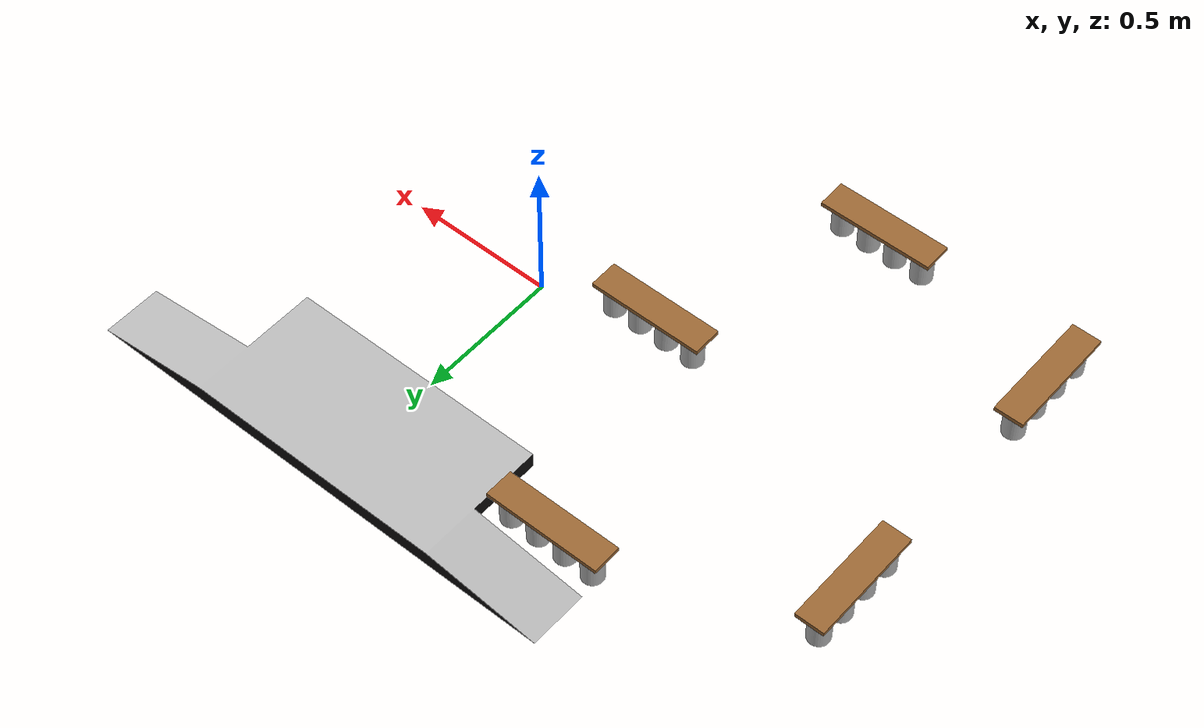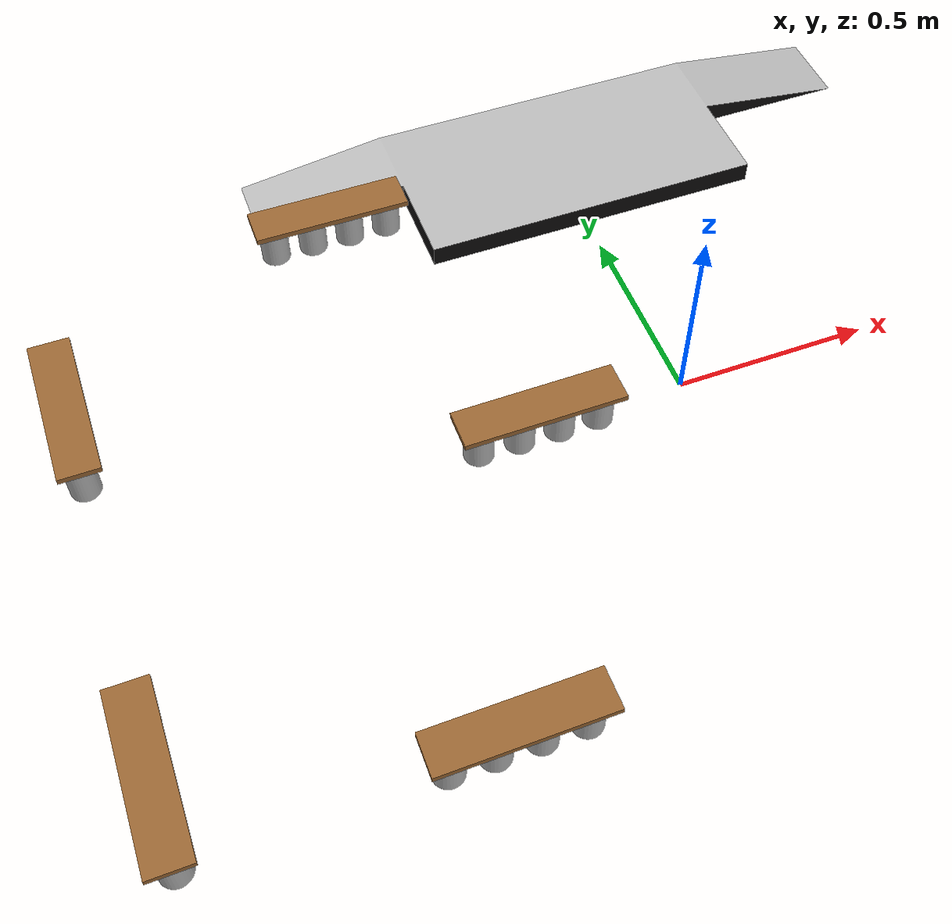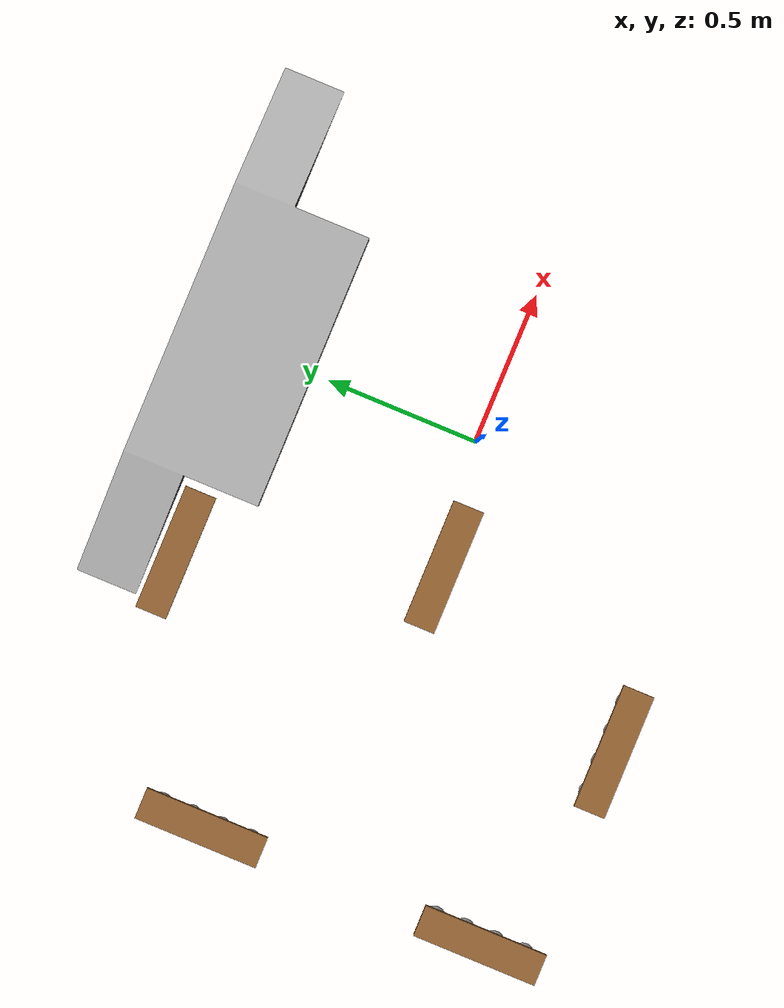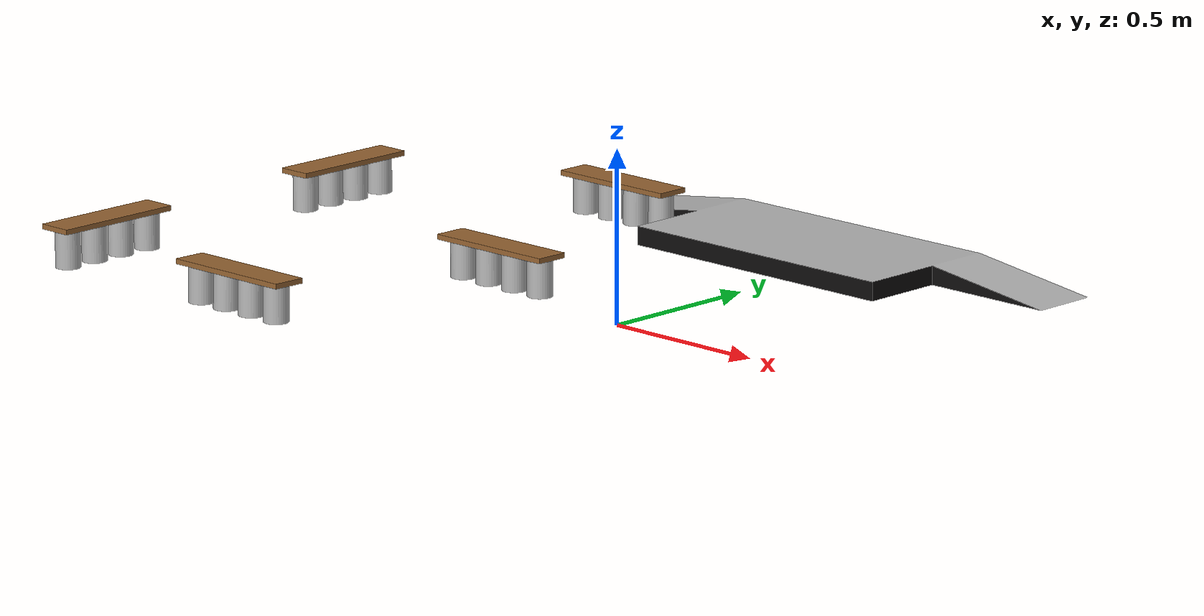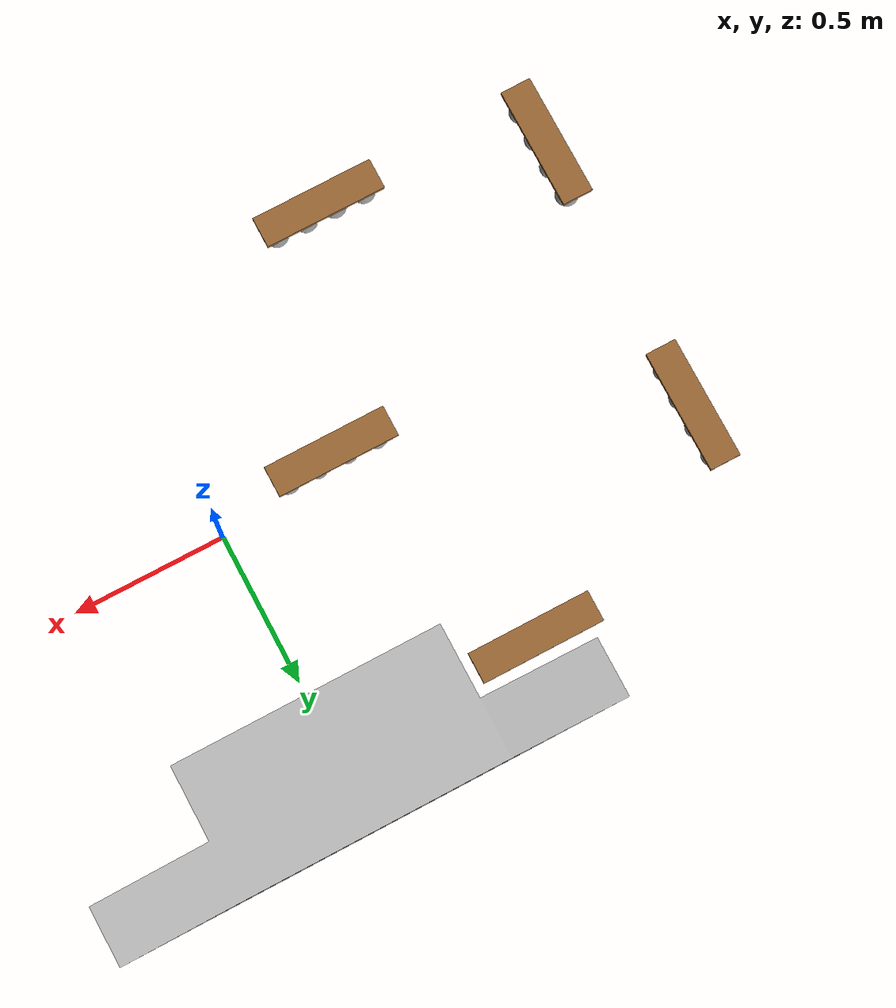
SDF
<sdf version="1.7">
 <world name="default">
  <model name="Stage">
   <static>1</static>
   <plugin name="gz::sim::systems::Label" filename="gz-sim-label-system"><label>11</label></plugin>
   <link name="link_0">
    <inertial>
     <pose>0 0 0.02 0 -0 0</pose>
     <mass>0.025</mass>
     <inertia><ixx>2.5e-05</ixx><ixy>0</ixy><ixz>0</ixz><iyy>2.5e-05</iyy><iyz>0</iyz><izz>8e-06</izz></inertia>
    </inertial>
    <visual name="visual">
     <geometry><mesh><uri>model://Stage/meshes/stage.dae</uri><scale>1 1 1</scale></mesh></geometry>
    </visual>
    <collision name="table_collision">
     <geometry><mesh><scale>1 1 1</scale><uri>model://Stage/meshes/stage.dae</uri></mesh></geometry>
    </collision>
   </link>
   <pose>-0.071315 0.782 0.047551 0 0 -1.57</pose>
  </model>
  <model name="Can">
   <static>0</static>
   <plugin name="gz::sim::systems::Label" filename="gz-sim-label-system"><label>11</label></plugin>
   <link name="link_0">
    <inertial>
     <pose>0 0 0.02 0 -0 0</pose>
     <mass>0.025</mass>
     <inertia><ixx>2.5e-05</ixx><ixy>0</ixy><ixz>0</ixz><iyy>2.5e-05</iyy><iyz>0</iyz><izz>8e-06</izz></inertia>
    </inertial>
    <visual name="visual">
     <geometry><mesh><uri>model://Can/meshes/can.dae</uri><scale>1 1 1</scale></mesh></geometry>
    </visual>
    <collision name="collision">
     <max_contacts>20</max_contacts>
     <pose>0 0 0.0545 0 -0 0</pose>
     <geometry><cylinder><radius>0.0365</radius><length>0.109</length></cylinder></geometry>
     <surface>
      <friction><ode><mu>0.9</mu><mu2>0.9</mu2></ode></friction>
      <contact>
       <ode>
        <soft_cfm>0</soft_cfm>
        <soft_erp>0.2</soft_erp>
        <kp>10</kp>
        <kd>1e+09</kd>
        <max_vel>0.01</max_vel>
        <min_depth>0.001</min_depth>
       </ode>
      </contact>
     </surface>
    </collision>
   </link>
   <pose>-1.42534 0.474681 0.047323 -2.2e-05 8.2e-05 -0</pose>
  </model>
  <model name="Can_0">
   <static>0</static>
   <plugin name="gz::sim::systems::Label" filename="gz-sim-label-system"><label>11</label></plugin>
   <link name="link_0">
    <inertial>
     <pose>0 0 0.02 0 -0 0</pose>
     <mass>0.025</mass>
     <inertia><ixx>2.5e-05</ixx><ixy>0</ixy><ixz>0</ixz><iyy>2.5e-05</iyy><iyz>0</iyz><izz>8e-06</izz></inertia>
    </inertial>
    <visual name="visual">
     <geometry><mesh><uri>model://Can/meshes/can.dae</uri><scale>1 1 1</scale></mesh></geometry>
    </visual>
    <collision name="collision">
     <max_contacts>20</max_contacts>
     <pose>0 0 0.0545 0 -0 0</pose>
     <geometry><cylinder><radius>0.0365</radius><length>0.109</length></cylinder></geometry>
     <surface>
      <friction><ode><mu>0.9</mu><mu2>0.9</mu2></ode></friction>
      <contact>
       <ode>
        <soft_cfm>0</soft_cfm>
        <soft_erp>0.2</soft_erp>
        <kp>10</kp>
        <kd>1e+09</kd>
        <max_vel>0.01</max_vel>
        <min_depth>0.001</min_depth>
       </ode>
      </contact>
     </surface>
    </collision>
   </link>
   <pose>-1.42461 0.374855 0.047159 -2.4e-05 0.000124 1e-06</pose>
  </model>
  <model name="Can_1">
   <static>0</static>
   <plugin name="gz::sim::systems::Label" filename="gz-sim-label-system"><label>11</label></plugin>
   <link name="link_0">
    <inertial>
     <pose>0 0 0.02 0 -0 0</pose>
     <mass>0.025</mass>
     <inertia><ixx>2.5e-05</ixx><ixy>0</ixy><ixz>0</ixz><iyy>2.5e-05</iyy><iyz>0</iyz><izz>8e-06</izz></inertia>
    </inertial>
    <visual name="visual">
     <geometry><mesh><uri>model://Can/meshes/can.dae</uri><scale>1 1 1</scale></mesh></geometry>
    </visual>
    <collision name="collision">
     <max_contacts>20</max_contacts>
     <pose>0 0 0.0545 0 -0 0</pose>
     <geometry><cylinder><radius>0.0365</radius><length>0.109</length></cylinder></geometry>
     <surface>
      <friction><ode><mu>0.9</mu><mu2>0.9</mu2></ode></friction>
      <contact>
       <ode>
        <soft_cfm>0</soft_cfm>
        <soft_erp>0.2</soft_erp>
        <kp>10</kp>
        <kd>1e+09</kd>
        <max_vel>0.01</max_vel>
        <min_depth>0.001</min_depth>
       </ode>
      </contact>
     </surface>
    </collision>
   </link>
   <pose>-1.42486 0.27501 0.047584 -2.3e-05 0.000141 1e-06</pose>
  </model>
  <model name="Can_2">
   <static>0</static>
   <plugin name="gz::sim::systems::Label" filename="gz-sim-label-system"><label>11</label></plugin>
   <link name="link_0">
    <inertial>
     <pose>0 0 0.02 0 -0 0</pose>
     <mass>0.025</mass>
     <inertia><ixx>2.5e-05</ixx><ixy>0</ixy><ixz>0</ixz><iyy>2.5e-05</iyy><iyz>0</iyz><izz>8e-06</izz></inertia>
    </inertial>
    <visual name="visual">
     <geometry><mesh><uri>model://Can/meshes/can.dae</uri><scale>1 1 1</scale></mesh></geometry>
    </visual>
    <collision name="collision">
     <max_contacts>20</max_contacts>
     <pose>0 0 0.0545 0 -0 0</pose>
     <geometry><cylinder><radius>0.0365</radius><length>0.109</length></cylinder></geometry>
     <surface>
      <friction><ode><mu>0.9</mu><mu2>0.9</mu2></ode></friction>
      <contact>
       <ode>
        <soft_cfm>0</soft_cfm>
        <soft_erp>0.2</soft_erp>
        <kp>10</kp>
        <kd>1e+09</kd>
        <max_vel>0.01</max_vel>
        <min_depth>0.001</min_depth>
       </ode>
      </contact>
     </surface>
    </collision>
   </link>
   <pose>-1.42532 0.174907 0.046965 0 -0 0</pose>
  </model>
  <model name="Can_3">
   <static>0</static>
   <plugin name="gz::sim::systems::Label" filename="gz-sim-label-system"><label>11</label></plugin>
   <link name="link_0">
    <inertial>
     <pose>0 0 0.02 0 -0 0</pose>
     <mass>0.025</mass>
     <inertia><ixx>2.5e-05</ixx><ixy>0</ixy><ixz>0</ixz><iyy>2.5e-05</iyy><iyz>0</iyz><izz>8e-06</izz></inertia>
    </inertial>
    <visual name="visual">
     <geometry><mesh><uri>model://Can/meshes/can.dae</uri><scale>1 1 1</scale></mesh></geometry>
    </visual>
    <collision name="collision">
     <max_contacts>20</max_contacts>
     <pose>0 0 0.0545 0 -0 0</pose>
     <geometry><cylinder><radius>0.0365</radius><length>0.109</length></cylinder></geometry>
     <surface>
      <friction><ode><mu>0.9</mu><mu2>0.9</mu2></ode></friction>
      <contact>
       <ode>
        <soft_cfm>0</soft_cfm>
        <soft_erp>0.2</soft_erp>
        <kp>10</kp>
        <kd>1e+09</kd>
        <max_vel>0.01</max_vel>
        <min_depth>0.001</min_depth>
       </ode>
      </contact>
     </surface>
    </collision>
   </link>
   <pose>-1.42546 -0.750038 0.046914 0 -0 0</pose>
  </model>
  <model name="Can_4">
   <static>0</static>
   <plugin name="gz::sim::systems::Label" filename="gz-sim-label-system"><label>11</label></plugin>
   <link name="link_0">
    <inertial>
     <pose>0 0 0.02 0 -0 0</pose>
     <mass>0.025</mass>
     <inertia><ixx>2.5e-05</ixx><ixy>0</ixy><ixz>0</ixz><iyy>2.5e-05</iyy><iyz>0</iyz><izz>8e-06</izz></inertia>
    </inertial>
    <visual name="visual">
     <geometry><mesh><uri>model://Can/meshes/can.dae</uri><scale>1 1 1</scale></mesh></geometry>
    </visual>
    <collision name="collision">
     <max_contacts>20</max_contacts>
     <pose>0 0 0.0545 0 -0 0</pose>
     <geometry><cylinder><radius>0.0365</radius><length>0.109</length></cylinder></geometry>
     <surface>
      <friction><ode><mu>0.9</mu><mu2>0.9</mu2></ode></friction>
      <contact>
       <ode>
        <soft_cfm>0</soft_cfm>
        <soft_erp>0.2</soft_erp>
        <kp>10</kp>
        <kd>1e+09</kd>
        <max_vel>0.01</max_vel>
        <min_depth>0.001</min_depth>
       </ode>
      </contact>
     </surface>
    </collision>
   </link>
   <pose>-1.42553 -0.64996 0.047006 0.000123 0.000204 -1e-06</pose>
  </model>
  <model name="Can_5">
   <static>0</static>
   <plugin name="gz::sim::systems::Label" filename="gz-sim-label-system"><label>11</label></plugin>
   <link name="link_0">
    <inertial>
     <pose>0 0 0.02 0 -0 0</pose>
     <mass>0.025</mass>
     <inertia><ixx>2.5e-05</ixx><ixy>0</ixy><ixz>0</ixz><iyy>2.5e-05</iyy><iyz>0</iyz><izz>8e-06</izz></inertia>
    </inertial>
    <visual name="visual">
     <geometry><mesh><uri>model://Can/meshes/can.dae</uri><scale>1 1 1</scale></mesh></geometry>
    </visual>
    <collision name="collision">
     <max_contacts>20</max_contacts>
     <pose>0 0 0.0545 0 -0 0</pose>
     <geometry><cylinder><radius>0.0365</radius><length>0.109</length></cylinder></geometry>
     <surface>
      <friction><ode><mu>0.9</mu><mu2>0.9</mu2></ode></friction>
      <contact>
       <ode>
        <soft_cfm>0</soft_cfm>
        <soft_erp>0.2</soft_erp>
        <kp>10</kp>
        <kd>1e+09</kd>
        <max_vel>0.01</max_vel>
        <min_depth>0.001</min_depth>
       </ode>
      </contact>
     </surface>
    </collision>
   </link>
   <pose>-1.42525 -0.54997 0.047629 8.9e-05 0.000146 0</pose>
  </model>
  <model name="Can_6">
   <static>0</static>
   <plugin name="gz::sim::systems::Label" filename="gz-sim-label-system"><label>11</label></plugin>
   <link name="link_0">
    <inertial>
     <pose>0 0 0.02 0 -0 0</pose>
     <mass>0.025</mass>
     <inertia><ixx>2.5e-05</ixx><ixy>0</ixy><ixz>0</ixz><iyy>2.5e-05</iyy><iyz>0</iyz><izz>8e-06</izz></inertia>
    </inertial>
    <visual name="visual">
     <geometry><mesh><uri>model://Can/meshes/can.dae</uri><scale>1 1 1</scale></mesh></geometry>
    </visual>
    <collision name="collision">
     <max_contacts>20</max_contacts>
     <pose>0 0 0.0545 0 -0 0</pose>
     <geometry><cylinder><radius>0.0365</radius><length>0.109</length></cylinder></geometry>
     <surface>
      <friction><ode><mu>0.9</mu><mu2>0.9</mu2></ode></friction>
      <contact>
       <ode>
        <soft_cfm>0</soft_cfm>
        <soft_erp>0.2</soft_erp>
        <kp>10</kp>
        <kd>1e+09</kd>
        <max_vel>0.01</max_vel>
        <min_depth>0.001</min_depth>
       </ode>
      </contact>
     </surface>
    </collision>
   </link>
   <pose>-1.42518 -0.449827 0.047314 5e-06 2.1e-05 -0</pose>
  </model>
  <model name="Can_7">
   <static>0</static>
   <plugin name="gz::sim::systems::Label" filename="gz-sim-label-system"><label>11</label></plugin>
   <link name="link_0">
    <inertial>
     <pose>0 0 0.02 0 -0 0</pose>
     <mass>0.025</mass>
     <inertia><ixx>2.5e-05</ixx><ixy>0</ixy><ixz>0</ixz><iyy>2.5e-05</iyy><iyz>0</iyz><izz>8e-06</izz></inertia>
    </inertial>
    <visual name="visual">
     <geometry><mesh><uri>model://Can/meshes/can.dae</uri><scale>1 1 1</scale></mesh></geometry>
    </visual>
    <collision name="collision">
     <max_contacts>20</max_contacts>
     <pose>0 0 0.0545 0 -0 0</pose>
     <geometry><cylinder><radius>0.0365</radius><length>0.109</length></cylinder></geometry>
     <surface>
      <friction><ode><mu>0.9</mu><mu2>0.9</mu2></ode></friction>
      <contact>
       <ode>
        <soft_cfm>0</soft_cfm>
        <soft_erp>0.2</soft_erp>
        <kp>10</kp>
        <kd>1e+09</kd>
        <max_vel>0.01</max_vel>
        <min_depth>0.001</min_depth>
       </ode>
      </contact>
     </surface>
    </collision>
   </link>
   <pose>-0.825139 0.725605 0.047322 -0.000366 5.9e-05 0</pose>
  </model>
  <model name="Can_8">
   <static>0</static>
   <plugin name="gz::sim::systems::Label" filename="gz-sim-label-system"><label>11</label></plugin>
   <link name="link_0">
    <inertial>
     <pose>0 0 0.02 0 -0 0</pose>
     <mass>0.025</mass>
     <inertia><ixx>2.5e-05</ixx><ixy>0</ixy><ixz>0</ixz><iyy>2.5e-05</iyy><iyz>0</iyz><izz>8e-06</izz></inertia>
    </inertial>
    <visual name="visual">
     <geometry><mesh><uri>model://Can/meshes/can.dae</uri><scale>1 1 1</scale></mesh></geometry>
    </visual>
    <collision name="collision">
     <max_contacts>20</max_contacts>
     <pose>0 0 0.0545 0 -0 0</pose>
     <geometry><cylinder><radius>0.0365</radius><length>0.109</length></cylinder></geometry>
     <surface>
      <friction><ode><mu>0.9</mu><mu2>0.9</mu2></ode></friction>
      <contact>
       <ode>
        <soft_cfm>0</soft_cfm>
        <soft_erp>0.2</soft_erp>
        <kp>10</kp>
        <kd>1e+09</kd>
        <max_vel>0.01</max_vel>
        <min_depth>0.001</min_depth>
       </ode>
      </contact>
     </surface>
    </collision>
   </link>
   <pose>-0.724833 0.725455 0.047322 -0.000464 6.2e-05 -1e-06</pose>
  </model>
  <model name="Can_9">
   <static>0</static>
   <plugin name="gz::sim::systems::Label" filename="gz-sim-label-system"><label>11</label></plugin>
   <link name="link_0">
    <inertial>
     <pose>0 0 0.02 0 -0 0</pose>
     <mass>0.025</mass>
     <inertia><ixx>2.5e-05</ixx><ixy>0</ixy><ixz>0</ixz><iyy>2.5e-05</iyy><iyz>0</iyz><izz>8e-06</izz></inertia>
    </inertial>
    <visual name="visual">
     <geometry><mesh><uri>model://Can/meshes/can.dae</uri><scale>1 1 1</scale></mesh></geometry>
    </visual>
    <collision name="collision">
     <max_contacts>20</max_contacts>
     <pose>0 0 0.0545 0 -0 0</pose>
     <geometry><cylinder><radius>0.0365</radius><length>0.109</length></cylinder></geometry>
     <surface>
      <friction><ode><mu>0.9</mu><mu2>0.9</mu2></ode></friction>
      <contact>
       <ode>
        <soft_cfm>0</soft_cfm>
        <soft_erp>0.2</soft_erp>
        <kp>10</kp>
        <kd>1e+09</kd>
        <max_vel>0.01</max_vel>
        <min_depth>0.001</min_depth>
       </ode>
      </contact>
     </surface>
    </collision>
   </link>
   <pose>-0.624857 0.725021 0.047324 -0.000449 6.1e-05 0</pose>
  </model>
  <model name="Can_20">
   <static>0</static>
   <plugin name="gz::sim::systems::Label" filename="gz-sim-label-system"><label>11</label></plugin>
   <link name="link_0">
    <inertial>
     <pose>0 0 0.02 0 -0 0</pose>
     <mass>0.025</mass>
     <inertia><ixx>2.5e-05</ixx><ixy>0</ixy><ixz>0</ixz><iyy>2.5e-05</iyy><iyz>0</iyz><izz>8e-06</izz></inertia>
    </inertial>
    <visual name="visual">
     <geometry><mesh><uri>model://Can/meshes/can.dae</uri><scale>1 1 1</scale></mesh></geometry>
    </visual>
    <collision name="collision">
     <max_contacts>20</max_contacts>
     <pose>0 0 0.0545 0 -0 0</pose>
     <geometry><cylinder><radius>0.0365</radius><length>0.109</length></cylinder></geometry>
     <surface>
      <friction><ode><mu>0.9</mu><mu2>0.9</mu2></ode></friction>
      <contact>
       <ode>
        <soft_cfm>0</soft_cfm>
        <soft_erp>0.2</soft_erp>
        <kp>10</kp>
        <kd>1e+09</kd>
        <max_vel>0.01</max_vel>
        <min_depth>0.001</min_depth>
       </ode>
      </contact>
     </surface>
    </collision>
   </link>
   <pose>-0.524849 0.725291 0.047322 -0.000333 4.1e-05 0</pose>
  </model>
  <model name="Can_19">
   <static>0</static>
   <plugin name="gz::sim::systems::Label" filename="gz-sim-label-system"><label>11</label></plugin>
   <link name="link_0">
    <inertial>
     <pose>0 0 0.02 0 -0 0</pose>
     <mass>0.025</mass>
     <inertia><ixx>2.5e-05</ixx><ixy>0</ixy><ixz>0</ixz><iyy>2.5e-05</iyy><iyz>0</iyz><izz>8e-06</izz></inertia>
    </inertial>
    <visual name="visual">
     <geometry><mesh><uri>model://Can/meshes/can.dae</uri><scale>1 1 1</scale></mesh></geometry>
    </visual>
    <collision name="collision">
     <max_contacts>20</max_contacts>
     <pose>0 0 0.0545 0 -0 0</pose>
     <geometry><cylinder><radius>0.0365</radius><length>0.109</length></cylinder></geometry>
     <surface>
      <friction><ode><mu>0.9</mu><mu2>0.9</mu2></ode></friction>
      <contact>
       <ode>
        <soft_cfm>0</soft_cfm>
        <soft_erp>0.2</soft_erp>
        <kp>10</kp>
        <kd>1e+09</kd>
        <max_vel>0.01</max_vel>
        <min_depth>0.001</min_depth>
       </ode>
      </contact>
     </surface>
    </collision>
   </link>
   <pose>-0.550319 -0.04974 0.047324 0.00019 -1.1e-05 0</pose>
  </model>
  <model name="Can_21">
   <static>0</static>
   <plugin name="gz::sim::systems::Label" filename="gz-sim-label-system"><label>11</label></plugin>
   <link name="link_0">
    <inertial>
     <pose>0 0 0.02 0 -0 0</pose>
     <mass>0.025</mass>
     <inertia><ixx>2.5e-05</ixx><ixy>0</ixy><ixz>0</ixz><iyy>2.5e-05</iyy><iyz>0</iyz><izz>8e-06</izz></inertia>
    </inertial>
    <visual name="visual">
     <geometry><mesh><uri>model://Can/meshes/can.dae</uri><scale>1 1 1</scale></mesh></geometry>
    </visual>
    <collision name="collision">
     <max_contacts>20</max_contacts>
     <pose>0 0 0.0545 0 -0 0</pose>
     <geometry><cylinder><radius>0.0365</radius><length>0.109</length></cylinder></geometry>
     <surface>
      <friction><ode><mu>0.9</mu><mu2>0.9</mu2></ode></friction>
      <contact>
       <ode>
        <soft_cfm>0</soft_cfm>
        <soft_erp>0.2</soft_erp>
        <kp>10</kp>
        <kd>1e+09</kd>
        <max_vel>0.01</max_vel>
        <min_depth>0.001</min_depth>
       </ode>
      </contact>
     </surface>
    </collision>
   </link>
   <pose>-0.449206 -0.050984 0.047326 0.000333 -1e-05 0</pose>
  </model>
  <model name="Can_22">
   <static>0</static>
   <plugin name="gz::sim::systems::Label" filename="gz-sim-label-system"><label>11</label></plugin>
   <link name="link_0">
    <inertial>
     <pose>0 0 0.02 0 -0 0</pose>
     <mass>0.025</mass>
     <inertia><ixx>2.5e-05</ixx><ixy>0</ixy><ixz>0</ixz><iyy>2.5e-05</iyy><iyz>0</iyz><izz>8e-06</izz></inertia>
    </inertial>
    <visual name="visual">
     <geometry><mesh><uri>model://Can/meshes/can.dae</uri><scale>1 1 1</scale></mesh></geometry>
    </visual>
    <collision name="collision">
     <max_contacts>20</max_contacts>
     <pose>0 0 0.0545 0 -0 0</pose>
     <geometry><cylinder><radius>0.0365</radius><length>0.109</length></cylinder></geometry>
     <surface>
      <friction><ode><mu>0.9</mu><mu2>0.9</mu2></ode></friction>
      <contact>
       <ode>
        <soft_cfm>0</soft_cfm>
        <soft_erp>0.2</soft_erp>
        <kp>10</kp>
        <kd>1e+09</kd>
        <max_vel>0.01</max_vel>
        <min_depth>0.001</min_depth>
       </ode>
      </contact>
     </surface>
    </collision>
   </link>
   <pose>-0.348793 -0.050871 0.047324 0.000329 -9e-06 -0</pose>
  </model>
  <model name="Can_23">
   <static>0</static>
   <plugin name="gz::sim::systems::Label" filename="gz-sim-label-system"><label>11</label></plugin>
   <link name="link_0">
    <inertial>
     <pose>0 0 0.02 0 -0 0</pose>
     <mass>0.025</mass>
     <inertia><ixx>2.5e-05</ixx><ixy>0</ixy><ixz>0</ixz><iyy>2.5e-05</iyy><iyz>0</iyz><izz>8e-06</izz></inertia>
    </inertial>
    <visual name="visual">
     <geometry><mesh><uri>model://Can/meshes/can.dae</uri><scale>1 1 1</scale></mesh></geometry>
    </visual>
    <collision name="collision">
     <max_contacts>20</max_contacts>
     <pose>0 0 0.0545 0 -0 0</pose>
     <geometry><cylinder><radius>0.0365</radius><length>0.109</length></cylinder></geometry>
     <surface>
      <friction><ode><mu>0.9</mu><mu2>0.9</mu2></ode></friction>
      <contact>
       <ode>
        <soft_cfm>0</soft_cfm>
        <soft_erp>0.2</soft_erp>
        <kp>10</kp>
        <kd>1e+09</kd>
        <max_vel>0.01</max_vel>
        <min_depth>0.001</min_depth>
       </ode>
      </contact>
     </surface>
    </collision>
   </link>
   <pose>-0.250116 -0.049773 0.047324 0.000194 -1.1e-05 0</pose>
  </model>
  <model name="Can_24">
   <static>0</static>
   <plugin name="gz::sim::systems::Label" filename="gz-sim-label-system"><label>11</label></plugin>
   <link name="link_0">
    <inertial>
     <pose>0 0 0.02 0 -0 0</pose>
     <mass>0.025</mass>
     <inertia><ixx>2.5e-05</ixx><ixy>0</ixy><ixz>0</ixz><iyy>2.5e-05</iyy><iyz>0</iyz><izz>8e-06</izz></inertia>
    </inertial>
    <visual name="visual">
     <geometry><mesh><uri>model://Can/meshes/can.dae</uri><scale>1 1 1</scale></mesh></geometry>
    </visual>
    <collision name="collision">
     <max_contacts>20</max_contacts>
     <pose>0 0 0.0545 0 -0 0</pose>
     <geometry><cylinder><radius>0.0365</radius><length>0.109</length></cylinder></geometry>
     <surface>
      <friction><ode><mu>0.9</mu><mu2>0.9</mu2></ode></friction>
      <contact>
       <ode>
        <soft_cfm>0</soft_cfm>
        <soft_erp>0.2</soft_erp>
        <kp>10</kp>
        <kd>1e+09</kd>
        <max_vel>0.01</max_vel>
        <min_depth>0.001</min_depth>
       </ode>
      </contact>
     </surface>
    </collision>
   </link>
   <pose>-0.575106 -0.750403 0.047368 -0.007696 0.003349 0.000203</pose>
  </model>
  <model name="Can_25">
   <static>0</static>
   <plugin name="gz::sim::systems::Label" filename="gz-sim-label-system"><label>11</label></plugin>
   <link name="link_0">
    <inertial>
     <pose>0 0 0.02 0 -0 0</pose>
     <mass>0.025</mass>
     <inertia><ixx>2.5e-05</ixx><ixy>0</ixy><ixz>0</ixz><iyy>2.5e-05</iyy><iyz>0</iyz><izz>8e-06</izz></inertia>
    </inertial>
    <visual name="visual">
     <geometry><mesh><uri>model://Can/meshes/can.dae</uri><scale>1 1 1</scale></mesh></geometry>
    </visual>
    <collision name="collision">
     <max_contacts>20</max_contacts>
     <pose>0 0 0.0545 0 -0 0</pose>
     <geometry><cylinder><radius>0.0365</radius><length>0.109</length></cylinder></geometry>
     <surface>
      <friction><ode><mu>0.9</mu><mu2>0.9</mu2></ode></friction>
      <contact>
       <ode>
        <soft_cfm>0</soft_cfm>
        <soft_erp>0.2</soft_erp>
        <kp>10</kp>
        <kd>1e+09</kd>
        <max_vel>0.01</max_vel>
        <min_depth>0.001</min_depth>
       </ode>
      </contact>
     </surface>
    </collision>
   </link>
   <pose>-0.67536 -0.750441 0.047044 -0.017794 0.007473 -4.7e-05</pose>
  </model>
  <model name="Can_26">
   <static>0</static>
   <plugin name="gz::sim::systems::Label" filename="gz-sim-label-system"><label>11</label></plugin>
   <link name="link_0">
    <inertial>
     <pose>0 0 0.02 0 -0 0</pose>
     <mass>0.025</mass>
     <inertia><ixx>2.5e-05</ixx><ixy>0</ixy><ixz>0</ixz><iyy>2.5e-05</iyy><iyz>0</iyz><izz>8e-06</izz></inertia>
    </inertial>
    <visual name="visual">
     <geometry><mesh><uri>model://Can/meshes/can.dae</uri><scale>1 1 1</scale></mesh></geometry>
    </visual>
    <collision name="collision">
     <max_contacts>20</max_contacts>
     <pose>0 0 0.0545 0 -0 0</pose>
     <geometry><cylinder><radius>0.0365</radius><length>0.109</length></cylinder></geometry>
     <surface>
      <friction><ode><mu>0.9</mu><mu2>0.9</mu2></ode></friction>
      <contact>
       <ode>
        <soft_cfm>0</soft_cfm>
        <soft_erp>0.2</soft_erp>
        <kp>10</kp>
        <kd>1e+09</kd>
        <max_vel>0.01</max_vel>
        <min_depth>0.001</min_depth>
       </ode>
      </contact>
     </surface>
    </collision>
   </link>
   <pose>-0.775051 -0.750156 0.047222 -0.017126 0.007317 -2.5e-05</pose>
  </model>
  <model name="Can_27">
   <static>0</static>
   <plugin name="gz::sim::systems::Label" filename="gz-sim-label-system"><label>11</label></plugin>
   <link name="link_0">
    <inertial>
     <pose>0 0 0.02 0 -0 0</pose>
     <mass>0.025</mass>
     <inertia><ixx>2.5e-05</ixx><ixy>0</ixy><ixz>0</ixz><iyy>2.5e-05</iyy><iyz>0</iyz><izz>8e-06</izz></inertia>
    </inertial>
    <visual name="visual">
     <geometry><mesh><uri>model://Can/meshes/can.dae</uri><scale>1 1 1</scale></mesh></geometry>
    </visual>
    <collision name="collision">
     <max_contacts>20</max_contacts>
     <pose>0 0 0.0545 0 -0 0</pose>
     <geometry><cylinder><radius>0.0365</radius><length>0.109</length></cylinder></geometry>
     <surface>
      <friction><ode><mu>0.9</mu><mu2>0.9</mu2></ode></friction>
      <contact>
       <ode>
        <soft_cfm>0</soft_cfm>
        <soft_erp>0.2</soft_erp>
        <kp>10</kp>
        <kd>1e+09</kd>
        <max_vel>0.01</max_vel>
        <min_depth>0.001</min_depth>
       </ode>
      </contact>
     </surface>
    </collision>
   </link>
   <pose>-0.875221 -0.750131 0.047379 -0.01012 0.007151 -3.5e-05</pose>
  </model>
  <model name="plank">
   <static>0</static>
   <plugin name="gz::sim::systems::Label" filename="gz-sim-label-system"><label>10</label></plugin>
   <link name="link_0">
    <inertial>
     <pose>0 0 0.02 0 -0 0</pose>
     <mass>0.025</mass>
     <inertia><ixx>2.5e-05</ixx><ixy>0</ixy><ixz>0</ixz><iyy>2.5e-05</iyy><iyz>0</iyz><izz>8e-06</izz></inertia>
    </inertial>
    <visual name="visual">
     <geometry><box><size>0.4 0.1 0.015</size></box></geometry>
     <material>
      <ambient>0.6 0.4 0.2 1</ambient>
      <diffuse>0.6 0.4 0.2 1</diffuse>
      <specular>0.1 0.1 0.1 1</specular>
      <emissive>0 0 0 1</emissive>
     </material>
    </visual>
    <collision name="collision">
     <max_contacts>100</max_contacts>
     <geometry><box><size>0.4 0.1 0.015</size></box></geometry>
     <surface>
      <bounce><restitution_coefficient>0</restitution_coefficient><threshold>100000</threshold></bounce>
      <friction><ode><mu>2</mu><mu2>2</mu2></ode></friction>
      <contact>
       <ode>
        <soft_cfm>0</soft_cfm>
        <soft_erp>0.8</soft_erp>
        <kp>100000</kp>
        <kd>1</kd>
        <max_vel>0.1</max_vel>
        <min_depth>0.01</min_depth>
       </ode>
      </contact>
      <torsional>
       <coefficient>1</coefficient>
       <patch_radius>0.05</patch_radius>
       <surface_radius>0.05</surface_radius>
       <use_patch_radius>1</use_patch_radius>
       <ode><slip>0</slip></ode>
      </torsional>
     </surface>
    </collision>
   </link>
   <pose>-0.723296 -0.749495 0.163381 -0.017033 -0.000632 0.002647</pose>
  </model>
  <model name="plank_0">
   <static>0</static>
   <plugin name="gz::sim::systems::Label" filename="gz-sim-label-system"><label>10</label></plugin>
   <link name="link_0">
    <inertial>
     <pose>0 0 0.02 0 -0 0</pose>
     <mass>0.025</mass>
     <inertia><ixx>2.5e-05</ixx><ixy>0</ixy><ixz>0</ixz><iyy>2.5e-05</iyy><iyz>0</iyz><izz>8e-06</izz></inertia>
    </inertial>
    <visual name="visual">
     <geometry><box><size>0.4 0.1 0.015</size></box></geometry>
     <material>
      <ambient>0.6 0.4 0.2 1</ambient>
      <diffuse>0.6 0.4 0.2 1</diffuse>
      <specular>0.1 0.1 0.1 1</specular>
      <emissive>0 0 0 1</emissive>
     </material>
    </visual>
    <collision name="collision">
     <max_contacts>100</max_contacts>
     <geometry><box><size>0.4 0.1 0.015</size></box></geometry>
     <surface>
      <bounce><restitution_coefficient>0</restitution_coefficient><threshold>100000</threshold></bounce>
      <friction><ode><mu>2</mu><mu2>2</mu2></ode></friction>
      <contact>
       <ode>
        <soft_cfm>0</soft_cfm>
        <soft_erp>0.8</soft_erp>
        <kp>100000</kp>
        <kd>1</kd>
        <max_vel>0.1</max_vel>
        <min_depth>0.01</min_depth>
       </ode>
      </contact>
      <torsional>
       <coefficient>1</coefficient>
       <patch_radius>0.05</patch_radius>
       <surface_radius>0.05</surface_radius>
       <use_patch_radius>1</use_patch_radius>
       <ode><slip>0</slip></ode>
      </torsional>
     </surface>
    </collision>
   </link>
   <pose>-0.675446 0.723272 0.163765 -0.001079 0.000249 -0.000625</pose>
  </model>
  <model name="plank_6">
   <static>0</static>
   <plugin name="gz::sim::systems::Label" filename="gz-sim-label-system"><label>10</label></plugin>
   <link name="link_0">
    <inertial>
     <pose>0 0 0.02 0 -0 0</pose>
     <mass>0.025</mass>
     <inertia><ixx>2.5e-05</ixx><ixy>0</ixy><ixz>0</ixz><iyy>2.5e-05</iyy><iyz>0</iyz><izz>8e-06</izz></inertia>
    </inertial>
    <visual name="visual">
     <geometry><box><size>0.4 0.1 0.015</size></box></geometry>
     <material>
      <ambient>0.6 0.4 0.2 1</ambient>
      <diffuse>0.6 0.4 0.2 1</diffuse>
      <specular>0.1 0.1 0.1 1</specular>
      <emissive>0 0 0 1</emissive>
     </material>
    </visual>
    <collision name="collision">
     <max_contacts>100</max_contacts>
     <geometry><box><size>0.4 0.1 0.015</size></box></geometry>
     <surface>
      <bounce><restitution_coefficient>0</restitution_coefficient><threshold>100000</threshold></bounce>
      <friction><ode><mu>2</mu><mu2>2</mu2></ode></friction>
      <contact>
       <ode>
        <soft_cfm>0</soft_cfm>
        <soft_erp>0.8</soft_erp>
        <kp>100000</kp>
        <kd>1</kd>
        <max_vel>0.1</max_vel>
        <min_depth>0.01</min_depth>
       </ode>
      </contact>
      <torsional>
       <coefficient>1</coefficient>
       <patch_radius>0.05</patch_radius>
       <surface_radius>0.05</surface_radius>
       <use_patch_radius>1</use_patch_radius>
       <ode><slip>0</slip></ode>
      </torsional>
     </surface>
    </collision>
   </link>
   <pose>-0.401659 -0.051217 0.163541 -0.009487 -0.002267 0.001616</pose>
  </model>
  <model name="plank_4">
   <static>0</static>
   <plugin name="gz::sim::systems::Label" filename="gz-sim-label-system"><label>10</label></plugin>
   <link name="link_0">
    <inertial>
     <pose>0 0 0.02 0 -0 0</pose>
     <mass>0.025</mass>
     <inertia><ixx>2.5e-05</ixx><ixy>0</ixy><ixz>0</ixz><iyy>2.5e-05</iyy><iyz>0</iyz><izz>8e-06</izz></inertia>
    </inertial>
    <visual name="visual">
     <geometry><box><size>0.4 0.1 0.015</size></box></geometry>
     <material>
      <ambient>0.6 0.4 0.2 1</ambient>
      <diffuse>0.6 0.4 0.2 1</diffuse>
      <specular>0.1 0.1 0.1 1</specular>
      <emissive>0 0 0 1</emissive>
     </material>
    </visual>
    <collision name="collision">
     <max_contacts>100</max_contacts>
     <geometry><box><size>0.4 0.1 0.015</size></box></geometry>
     <surface>
      <bounce><restitution_coefficient>0</restitution_coefficient><threshold>100000</threshold></bounce>
      <friction><ode><mu>2</mu><mu2>2</mu2></ode></friction>
      <contact>
       <ode>
        <soft_cfm>0</soft_cfm>
        <soft_erp>0.8</soft_erp>
        <kp>100000</kp>
        <kd>1</kd>
        <max_vel>0.1</max_vel>
        <min_depth>0.01</min_depth>
       </ode>
      </contact>
      <torsional>
       <coefficient>1</coefficient>
       <patch_radius>0.05</patch_radius>
       <surface_radius>0.05</surface_radius>
       <use_patch_radius>1</use_patch_radius>
       <ode><slip>0</slip></ode>
      </torsional>
     </surface>
    </collision>
   </link>
   <pose>-1.42724 -0.598235 0.163467 0.001437 0.003224 1.57367</pose>
  </model>
  <model name="plank_5">
   <static>0</static>
   <plugin name="gz::sim::systems::Label" filename="gz-sim-label-system"><label>10</label></plugin>
   <link name="link_0">
    <inertial>
     <pose>0 0 0.02 0 -0 0</pose>
     <mass>0.025</mass>
     <inertia><ixx>2.5e-05</ixx><ixy>0</ixy><ixz>0</ixz><iyy>2.5e-05</iyy><iyz>0</iyz><izz>8e-06</izz></inertia>
    </inertial>
    <visual name="visual">
     <geometry><box><size>0.4 0.1 0.015</size></box></geometry>
     <material>
      <ambient>0.6 0.4 0.2 1</ambient>
      <diffuse>0.6 0.4 0.2 1</diffuse>
      <specular>0.1 0.1 0.1 1</specular>
      <emissive>0 0 0 1</emissive>
     </material>
    </visual>
    <collision name="collision">
     <max_contacts>100</max_contacts>
     <geometry><box><size>0.4 0.1 0.015</size></box></geometry>
     <surface>
      <bounce><restitution_coefficient>0</restitution_coefficient><threshold>100000</threshold></bounce>
      <friction><ode><mu>2</mu><mu2>2</mu2></ode></friction>
      <contact>
       <ode>
        <soft_cfm>0</soft_cfm>
        <soft_erp>0.8</soft_erp>
        <kp>100000</kp>
        <kd>1</kd>
        <max_vel>0.1</max_vel>
        <min_depth>0.01</min_depth>
       </ode>
      </contact>
      <torsional>
       <coefficient>1</coefficient>
       <patch_radius>0.05</patch_radius>
       <surface_radius>0.05</surface_radius>
       <use_patch_radius>1</use_patch_radius>
       <ode><slip>0</slip></ode>
      </torsional>
     </surface>
    </collision>
   </link>
   <pose>-1.42323 0.327244 0.163408 0.000947 0.004581 1.57367</pose>
  </model>
 </world>
</sdf>
